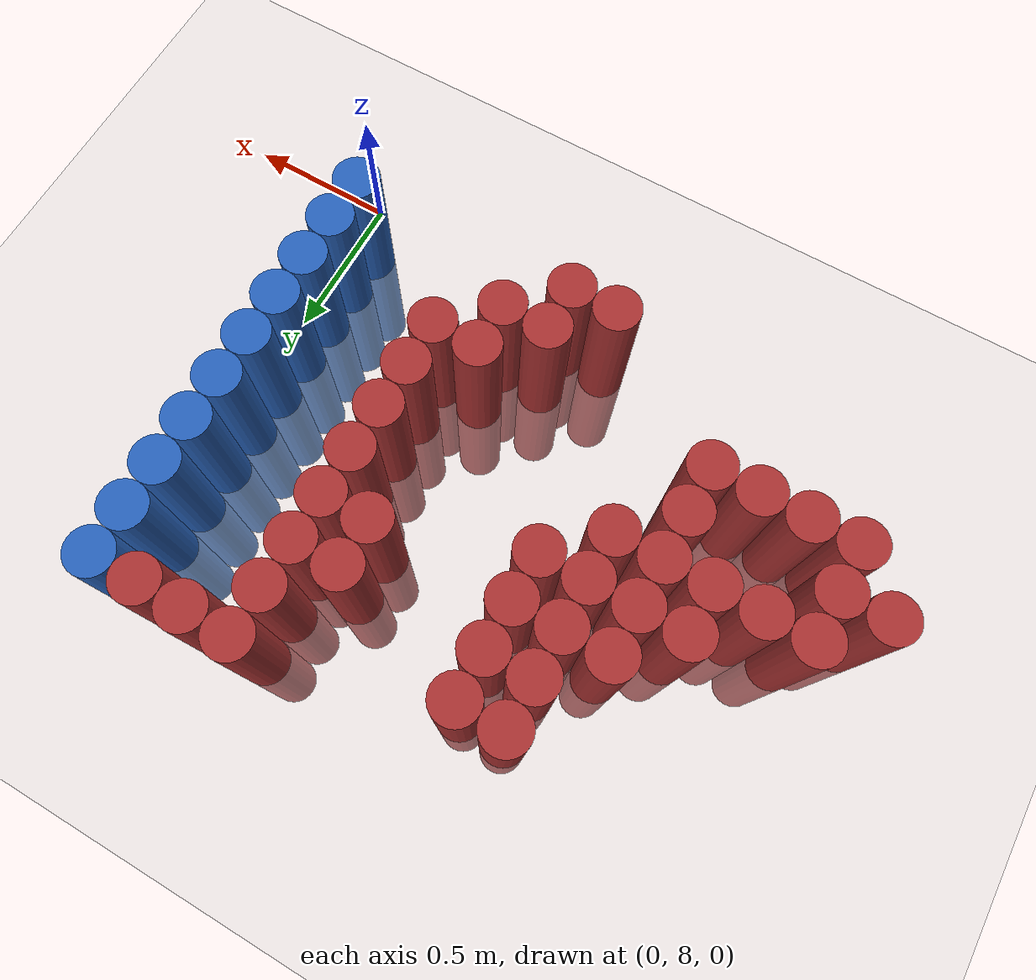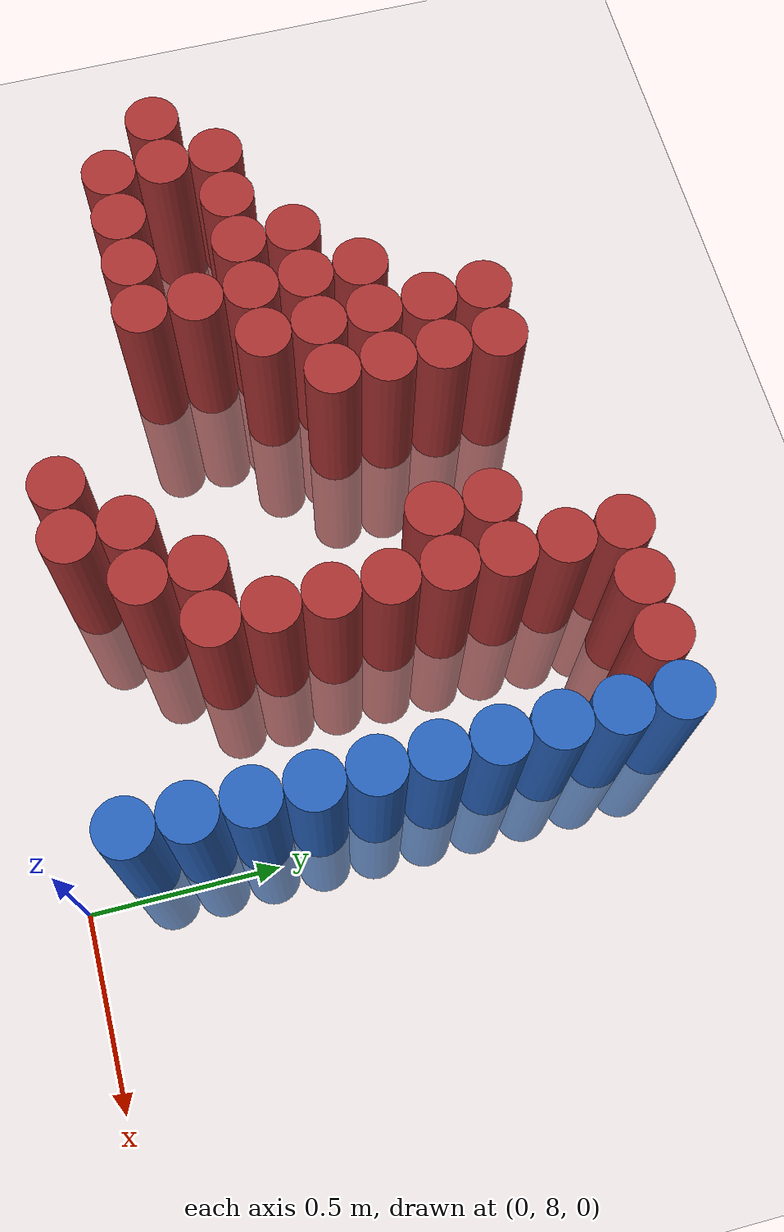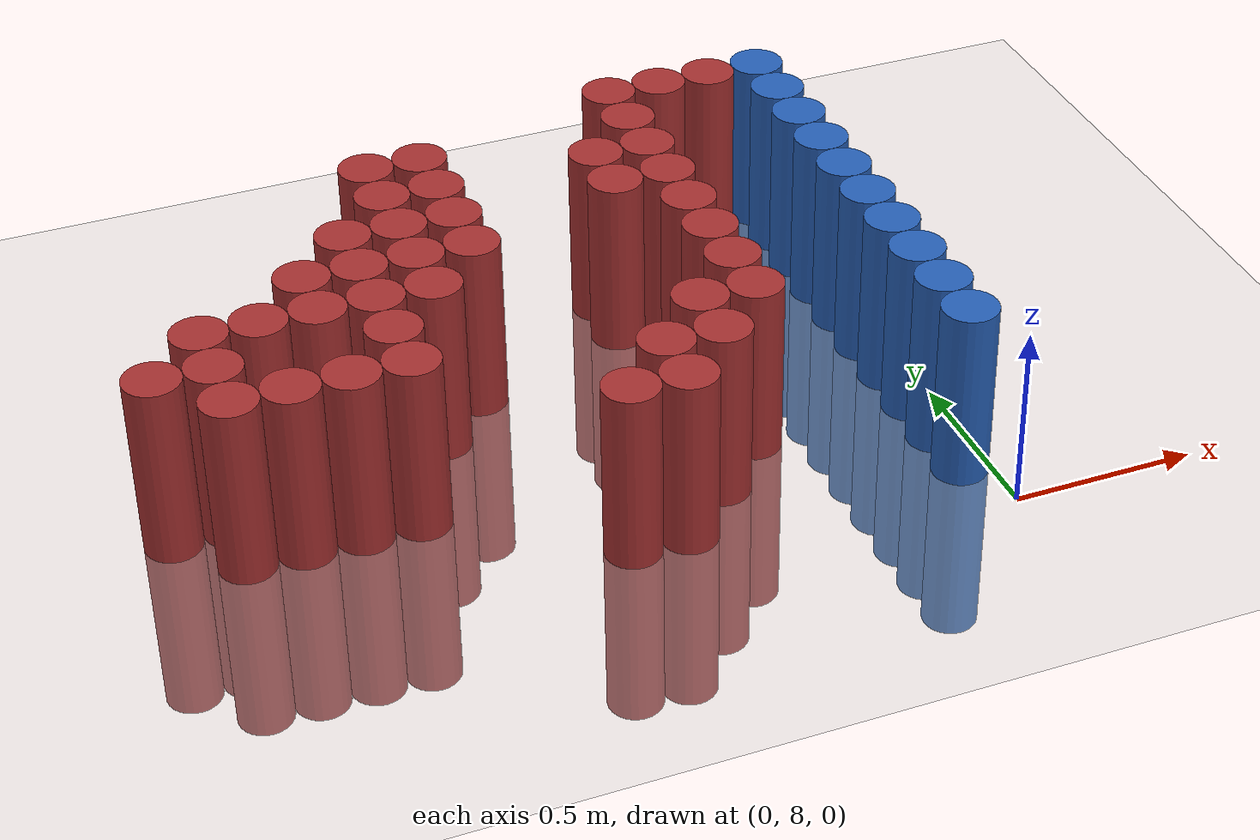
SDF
<sdf version="1.6">
 <world name="default">
  <model name="ground_plane">
   <static>1</static>
   <link name="link">
    <collision name="collision">
     <geometry><plane><normal>0 0 1</normal><size>100 100</size></plane></geometry>
     <surface><friction><ode><mu>100</mu><mu2>50</mu2></ode></friction></surface>
    </collision>
    <visual name="visual">
     <cast_shadows>0</cast_shadows>
     <geometry><plane><normal>0 0 1</normal><size>100 100</size></plane></geometry>
     <material>
      <script><uri>file://media/materials/scripts/gazebo.material</uri><name>Gazebo/Grey</name></script>
     </material>
    </visual>
   </link>
  </model>
  <model name="unit_cylinder_230">
   <static>1</static>
   <pose>-2.025000 8.625000 0.000000 0.000000 0.000000 0.000000</pose>
   <link name="link">
    <inertial>
     <mass>1</mass>
     <inertia><ixx>0.145833</ixx><ixy>0</ixy><ixz>0</ixz><iyy>0.145833</iyy><iyz>0</iyz><izz>0.125</izz></inertia>
    </inertial>
    <collision name="collision">
     <geometry><cylinder><radius>0.075000</radius><length>1</length></cylinder></geometry>
    </collision>
    <visual name="visual">
     <geometry><cylinder><radius>0.075000</radius><length>1</length></cylinder></geometry>
     <material>
      <ambient>0.648000 0.192000 0.192000 1</ambient>
      <diffuse>0.648000 0.192000 0.192000 1</diffuse>
     </material>
     <material>
      <script><name>Gazebo/Grey</name><uri>file://media/materials/scripts/gazebo.material</uri></script>
     </material>
    </visual>
   </link>
  </model>
  <model name="unit_cylinder_233">
   <static>1</static>
   <pose>-1.875000 8.475000 0.000000 0.000000 0.000000 0.000000</pose>
   <link name="link">
    <inertial>
     <mass>1</mass>
     <inertia><ixx>0.145833</ixx><ixy>0</ixy><ixz>0</ixz><iyy>0.145833</iyy><iyz>0</iyz><izz>0.125</izz></inertia>
    </inertial>
    <collision name="collision">
     <geometry><cylinder><radius>0.075000</radius><length>1</length></cylinder></geometry>
    </collision>
    <visual name="visual">
     <geometry><cylinder><radius>0.075000</radius><length>1</length></cylinder></geometry>
     <material>
      <ambient>0.648000 0.192000 0.192000 1</ambient>
      <diffuse>0.648000 0.192000 0.192000 1</diffuse>
     </material>
     <material>
      <script><name>Gazebo/Grey</name><uri>file://media/materials/scripts/gazebo.material</uri></script>
     </material>
    </visual>
   </link>
  </model>
  <model name="unit_cylinder_234">
   <static>1</static>
   <pose>-1.875000 8.625000 0.000000 0.000000 0.000000 0.000000</pose>
   <link name="link">
    <inertial>
     <mass>1</mass>
     <inertia><ixx>0.145833</ixx><ixy>0</ixy><ixz>0</ixz><iyy>0.145833</iyy><iyz>0</iyz><izz>0.125</izz></inertia>
    </inertial>
    <collision name="collision">
     <geometry><cylinder><radius>0.075000</radius><length>1</length></cylinder></geometry>
    </collision>
    <visual name="visual">
     <geometry><cylinder><radius>0.075000</radius><length>1</length></cylinder></geometry>
     <material>
      <ambient>0.648000 0.192000 0.192000 1</ambient>
      <diffuse>0.648000 0.192000 0.192000 1</diffuse>
     </material>
     <material>
      <script><name>Gazebo/Grey</name><uri>file://media/materials/scripts/gazebo.material</uri></script>
     </material>
    </visual>
   </link>
  </model>
  <model name="unit_cylinder_235">
   <static>1</static>
   <pose>-1.875000 8.775000 0.000000 0.000000 0.000000 0.000000</pose>
   <link name="link">
    <inertial>
     <mass>1</mass>
     <inertia><ixx>0.145833</ixx><ixy>0</ixy><ixz>0</ixz><iyy>0.145833</iyy><iyz>0</iyz><izz>0.125</izz></inertia>
    </inertial>
    <collision name="collision">
     <geometry><cylinder><radius>0.075000</radius><length>1</length></cylinder></geometry>
    </collision>
    <visual name="visual">
     <geometry><cylinder><radius>0.075000</radius><length>1</length></cylinder></geometry>
     <material>
      <ambient>0.648000 0.192000 0.192000 1</ambient>
      <diffuse>0.648000 0.192000 0.192000 1</diffuse>
     </material>
     <material>
      <script><name>Gazebo/Grey</name><uri>file://media/materials/scripts/gazebo.material</uri></script>
     </material>
    </visual>
   </link>
  </model>
  <model name="unit_cylinder_236">
   <static>1</static>
   <pose>-1.725000 8.475000 0.000000 0.000000 0.000000 0.000000</pose>
   <link name="link">
    <inertial>
     <mass>1</mass>
     <inertia><ixx>0.145833</ixx><ixy>0</ixy><ixz>0</ixz><iyy>0.145833</iyy><iyz>0</iyz><izz>0.125</izz></inertia>
    </inertial>
    <collision name="collision">
     <geometry><cylinder><radius>0.075000</radius><length>1</length></cylinder></geometry>
    </collision>
    <visual name="visual">
     <geometry><cylinder><radius>0.075000</radius><length>1</length></cylinder></geometry>
     <material>
      <ambient>0.648000 0.192000 0.192000 1</ambient>
      <diffuse>0.648000 0.192000 0.192000 1</diffuse>
     </material>
     <material>
      <script><name>Gazebo/Grey</name><uri>file://media/materials/scripts/gazebo.material</uri></script>
     </material>
    </visual>
   </link>
  </model>
  <model name="unit_cylinder_237">
   <static>1</static>
   <pose>-1.725000 8.775000 0.000000 0.000000 0.000000 0.000000</pose>
   <link name="link">
    <inertial>
     <mass>1</mass>
     <inertia><ixx>0.145833</ixx><ixy>0</ixy><ixz>0</ixz><iyy>0.145833</iyy><iyz>0</iyz><izz>0.125</izz></inertia>
    </inertial>
    <collision name="collision">
     <geometry><cylinder><radius>0.075000</radius><length>1</length></cylinder></geometry>
    </collision>
    <visual name="visual">
     <geometry><cylinder><radius>0.075000</radius><length>1</length></cylinder></geometry>
     <material>
      <ambient>0.648000 0.192000 0.192000 1</ambient>
      <diffuse>0.648000 0.192000 0.192000 1</diffuse>
     </material>
     <material>
      <script><name>Gazebo/Grey</name><uri>file://media/materials/scripts/gazebo.material</uri></script>
     </material>
    </visual>
   </link>
  </model>
  <model name="unit_cylinder_238">
   <static>1</static>
   <pose>-1.575000 8.475000 0.000000 0.000000 0.000000 0.000000</pose>
   <link name="link">
    <inertial>
     <mass>1</mass>
     <inertia><ixx>0.145833</ixx><ixy>0</ixy><ixz>0</ixz><iyy>0.145833</iyy><iyz>0</iyz><izz>0.125</izz></inertia>
    </inertial>
    <collision name="collision">
     <geometry><cylinder><radius>0.075000</radius><length>1</length></cylinder></geometry>
    </collision>
    <visual name="visual">
     <geometry><cylinder><radius>0.075000</radius><length>1</length></cylinder></geometry>
     <material>
      <ambient>0.648000 0.192000 0.192000 1</ambient>
      <diffuse>0.648000 0.192000 0.192000 1</diffuse>
     </material>
     <material>
      <script><name>Gazebo/Grey</name><uri>file://media/materials/scripts/gazebo.material</uri></script>
     </material>
    </visual>
   </link>
  </model>
  <model name="unit_cylinder_239">
   <static>1</static>
   <pose>-1.575000 8.775000 0.000000 0.000000 0.000000 0.000000</pose>
   <link name="link">
    <inertial>
     <mass>1</mass>
     <inertia><ixx>0.145833</ixx><ixy>0</ixy><ixz>0</ixz><iyy>0.145833</iyy><iyz>0</iyz><izz>0.125</izz></inertia>
    </inertial>
    <collision name="collision">
     <geometry><cylinder><radius>0.075000</radius><length>1</length></cylinder></geometry>
    </collision>
    <visual name="visual">
     <geometry><cylinder><radius>0.075000</radius><length>1</length></cylinder></geometry>
     <material>
      <ambient>0.648000 0.192000 0.192000 1</ambient>
      <diffuse>0.648000 0.192000 0.192000 1</diffuse>
     </material>
     <material>
      <script><name>Gazebo/Grey</name><uri>file://media/materials/scripts/gazebo.material</uri></script>
     </material>
    </visual>
   </link>
  </model>
  <model name="unit_cylinder_240">
   <static>1</static>
   <pose>-1.575000 8.925000 0.000000 0.000000 0.000000 0.000000</pose>
   <link name="link">
    <inertial>
     <mass>1</mass>
     <inertia><ixx>0.145833</ixx><ixy>0</ixy><ixz>0</ixz><iyy>0.145833</iyy><iyz>0</iyz><izz>0.125</izz></inertia>
    </inertial>
    <collision name="collision">
     <geometry><cylinder><radius>0.075000</radius><length>1</length></cylinder></geometry>
    </collision>
    <visual name="visual">
     <geometry><cylinder><radius>0.075000</radius><length>1</length></cylinder></geometry>
     <material>
      <ambient>0.648000 0.192000 0.192000 1</ambient>
      <diffuse>0.648000 0.192000 0.192000 1</diffuse>
     </material>
     <material>
      <script><name>Gazebo/Grey</name><uri>file://media/materials/scripts/gazebo.material</uri></script>
     </material>
    </visual>
   </link>
  </model>
  <model name="unit_cylinder_241">
   <static>1</static>
   <pose>-1.425000 8.475000 0.000000 0.000000 0.000000 0.000000</pose>
   <link name="link">
    <inertial>
     <mass>1</mass>
     <inertia><ixx>0.145833</ixx><ixy>0</ixy><ixz>0</ixz><iyy>0.145833</iyy><iyz>0</iyz><izz>0.125</izz></inertia>
    </inertial>
    <collision name="collision">
     <geometry><cylinder><radius>0.075000</radius><length>1</length></cylinder></geometry>
    </collision>
    <visual name="visual">
     <geometry><cylinder><radius>0.075000</radius><length>1</length></cylinder></geometry>
     <material>
      <ambient>0.648000 0.192000 0.192000 1</ambient>
      <diffuse>0.648000 0.192000 0.192000 1</diffuse>
     </material>
     <material>
      <script><name>Gazebo/Grey</name><uri>file://media/materials/scripts/gazebo.material</uri></script>
     </material>
    </visual>
   </link>
  </model>
  <model name="unit_cylinder_242">
   <static>1</static>
   <pose>-1.425000 8.625000 0.000000 0.000000 0.000000 0.000000</pose>
   <link name="link">
    <inertial>
     <mass>1</mass>
     <inertia><ixx>0.145833</ixx><ixy>0</ixy><ixz>0</ixz><iyy>0.145833</iyy><iyz>0</iyz><izz>0.125</izz></inertia>
    </inertial>
    <collision name="collision">
     <geometry><cylinder><radius>0.075000</radius><length>1</length></cylinder></geometry>
    </collision>
    <visual name="visual">
     <geometry><cylinder><radius>0.075000</radius><length>1</length></cylinder></geometry>
     <material>
      <ambient>0.648000 0.192000 0.192000 1</ambient>
      <diffuse>0.648000 0.192000 0.192000 1</diffuse>
     </material>
     <material>
      <script><name>Gazebo/Grey</name><uri>file://media/materials/scripts/gazebo.material</uri></script>
     </material>
    </visual>
   </link>
  </model>
  <model name="unit_cylinder_243">
   <static>1</static>
   <pose>-1.425000 8.775000 0.000000 0.000000 0.000000 0.000000</pose>
   <link name="link">
    <inertial>
     <mass>1</mass>
     <inertia><ixx>0.145833</ixx><ixy>0</ixy><ixz>0</ixz><iyy>0.145833</iyy><iyz>0</iyz><izz>0.125</izz></inertia>
    </inertial>
    <collision name="collision">
     <geometry><cylinder><radius>0.075000</radius><length>1</length></cylinder></geometry>
    </collision>
    <visual name="visual">
     <geometry><cylinder><radius>0.075000</radius><length>1</length></cylinder></geometry>
     <material>
      <ambient>0.648000 0.192000 0.192000 1</ambient>
      <diffuse>0.648000 0.192000 0.192000 1</diffuse>
     </material>
     <material>
      <script><name>Gazebo/Grey</name><uri>file://media/materials/scripts/gazebo.material</uri></script>
     </material>
    </visual>
   </link>
  </model>
  <model name="unit_cylinder_244">
   <static>1</static>
   <pose>-1.425000 8.925000 0.000000 0.000000 0.000000 0.000000</pose>
   <link name="link">
    <inertial>
     <mass>1</mass>
     <inertia><ixx>0.145833</ixx><ixy>0</ixy><ixz>0</ixz><iyy>0.145833</iyy><iyz>0</iyz><izz>0.125</izz></inertia>
    </inertial>
    <collision name="collision">
     <geometry><cylinder><radius>0.075000</radius><length>1</length></cylinder></geometry>
    </collision>
    <visual name="visual">
     <geometry><cylinder><radius>0.075000</radius><length>1</length></cylinder></geometry>
     <material>
      <ambient>0.648000 0.192000 0.192000 1</ambient>
      <diffuse>0.648000 0.192000 0.192000 1</diffuse>
     </material>
     <material>
      <script><name>Gazebo/Grey</name><uri>file://media/materials/scripts/gazebo.material</uri></script>
     </material>
    </visual>
   </link>
  </model>
  <model name="unit_cylinder_245">
   <static>1</static>
   <pose>-1.425000 9.075000 0.000000 0.000000 0.000000 0.000000</pose>
   <link name="link">
    <inertial>
     <mass>1</mass>
     <inertia><ixx>0.145833</ixx><ixy>0</ixy><ixz>0</ixz><iyy>0.145833</iyy><iyz>0</iyz><izz>0.125</izz></inertia>
    </inertial>
    <collision name="collision">
     <geometry><cylinder><radius>0.075000</radius><length>1</length></cylinder></geometry>
    </collision>
    <visual name="visual">
     <geometry><cylinder><radius>0.075000</radius><length>1</length></cylinder></geometry>
     <material>
      <ambient>0.648000 0.192000 0.192000 1</ambient>
      <diffuse>0.648000 0.192000 0.192000 1</diffuse>
     </material>
     <material>
      <script><name>Gazebo/Grey</name><uri>file://media/materials/scripts/gazebo.material</uri></script>
     </material>
    </visual>
   </link>
  </model>
  <model name="unit_cylinder_246">
   <static>1</static>
   <pose>-1.275000 8.775000 0.000000 0.000000 0.000000 0.000000</pose>
   <link name="link">
    <inertial>
     <mass>1</mass>
     <inertia><ixx>0.145833</ixx><ixy>0</ixy><ixz>0</ixz><iyy>0.145833</iyy><iyz>0</iyz><izz>0.125</izz></inertia>
    </inertial>
    <collision name="collision">
     <geometry><cylinder><radius>0.075000</radius><length>1</length></cylinder></geometry>
    </collision>
    <visual name="visual">
     <geometry><cylinder><radius>0.075000</radius><length>1</length></cylinder></geometry>
     <material>
      <ambient>0.648000 0.192000 0.192000 1</ambient>
      <diffuse>0.648000 0.192000 0.192000 1</diffuse>
     </material>
     <material>
      <script><name>Gazebo/Grey</name><uri>file://media/materials/scripts/gazebo.material</uri></script>
     </material>
    </visual>
   </link>
  </model>
  <model name="unit_cylinder_247">
   <static>1</static>
   <pose>-1.275000 8.925000 0.000000 0.000000 0.000000 0.000000</pose>
   <link name="link">
    <inertial>
     <mass>1</mass>
     <inertia><ixx>0.145833</ixx><ixy>0</ixy><ixz>0</ixz><iyy>0.145833</iyy><iyz>0</iyz><izz>0.125</izz></inertia>
    </inertial>
    <collision name="collision">
     <geometry><cylinder><radius>0.075000</radius><length>1</length></cylinder></geometry>
    </collision>
    <visual name="visual">
     <geometry><cylinder><radius>0.075000</radius><length>1</length></cylinder></geometry>
     <material>
      <ambient>0.648000 0.192000 0.192000 1</ambient>
      <diffuse>0.648000 0.192000 0.192000 1</diffuse>
     </material>
     <material>
      <script><name>Gazebo/Grey</name><uri>file://media/materials/scripts/gazebo.material</uri></script>
     </material>
    </visual>
   </link>
  </model>
  <model name="unit_cylinder_248">
   <static>1</static>
   <pose>-1.275000 9.075000 0.000000 0.000000 0.000000 0.000000</pose>
   <link name="link">
    <inertial>
     <mass>1</mass>
     <inertia><ixx>0.145833</ixx><ixy>0</ixy><ixz>0</ixz><iyy>0.145833</iyy><iyz>0</iyz><izz>0.125</izz></inertia>
    </inertial>
    <collision name="collision">
     <geometry><cylinder><radius>0.075000</radius><length>1</length></cylinder></geometry>
    </collision>
    <visual name="visual">
     <geometry><cylinder><radius>0.075000</radius><length>1</length></cylinder></geometry>
     <material>
      <ambient>0.648000 0.192000 0.192000 1</ambient>
      <diffuse>0.648000 0.192000 0.192000 1</diffuse>
     </material>
     <material>
      <script><name>Gazebo/Grey</name><uri>file://media/materials/scripts/gazebo.material</uri></script>
     </material>
    </visual>
   </link>
  </model>
  <model name="unit_cylinder_249">
   <static>1</static>
   <pose>-1.275000 9.225000 0.000000 0.000000 0.000000 0.000000</pose>
   <link name="link">
    <inertial>
     <mass>1</mass>
     <inertia><ixx>0.145833</ixx><ixy>0</ixy><ixz>0</ixz><iyy>0.145833</iyy><iyz>0</iyz><izz>0.125</izz></inertia>
    </inertial>
    <collision name="collision">
     <geometry><cylinder><radius>0.075000</radius><length>1</length></cylinder></geometry>
    </collision>
    <visual name="visual">
     <geometry><cylinder><radius>0.075000</radius><length>1</length></cylinder></geometry>
     <material>
      <ambient>0.648000 0.192000 0.192000 1</ambient>
      <diffuse>0.648000 0.192000 0.192000 1</diffuse>
     </material>
     <material>
      <script><name>Gazebo/Grey</name><uri>file://media/materials/scripts/gazebo.material</uri></script>
     </material>
    </visual>
   </link>
  </model>
  <model name="unit_cylinder_250">
   <static>1</static>
   <pose>-1.275000 9.375000 0.000000 0.000000 0.000000 0.000000</pose>
   <link name="link">
    <inertial>
     <mass>1</mass>
     <inertia><ixx>0.145833</ixx><ixy>0</ixy><ixz>0</ixz><iyy>0.145833</iyy><iyz>0</iyz><izz>0.125</izz></inertia>
    </inertial>
    <collision name="collision">
     <geometry><cylinder><radius>0.075000</radius><length>1</length></cylinder></geometry>
    </collision>
    <visual name="visual">
     <geometry><cylinder><radius>0.075000</radius><length>1</length></cylinder></geometry>
     <material>
      <ambient>0.648000 0.192000 0.192000 1</ambient>
      <diffuse>0.648000 0.192000 0.192000 1</diffuse>
     </material>
     <material>
      <script><name>Gazebo/Grey</name><uri>file://media/materials/scripts/gazebo.material</uri></script>
     </material>
    </visual>
   </link>
  </model>
  <model name="unit_cylinder_251">
   <static>1</static>
   <pose>-1.125000 8.925000 0.000000 0.000000 0.000000 0.000000</pose>
   <link name="link">
    <inertial>
     <mass>1</mass>
     <inertia><ixx>0.145833</ixx><ixy>0</ixy><ixz>0</ixz><iyy>0.145833</iyy><iyz>0</iyz><izz>0.125</izz></inertia>
    </inertial>
    <collision name="collision">
     <geometry><cylinder><radius>0.075000</radius><length>1</length></cylinder></geometry>
    </collision>
    <visual name="visual">
     <geometry><cylinder><radius>0.075000</radius><length>1</length></cylinder></geometry>
     <material>
      <ambient>0.648000 0.192000 0.192000 1</ambient>
      <diffuse>0.648000 0.192000 0.192000 1</diffuse>
     </material>
     <material>
      <script><name>Gazebo/Grey</name><uri>file://media/materials/scripts/gazebo.material</uri></script>
     </material>
    </visual>
   </link>
  </model>
  <model name="unit_cylinder_252">
   <static>1</static>
   <pose>-1.125000 9.075000 0.000000 0.000000 0.000000 0.000000</pose>
   <link name="link">
    <inertial>
     <mass>1</mass>
     <inertia><ixx>0.145833</ixx><ixy>0</ixy><ixz>0</ixz><iyy>0.145833</iyy><iyz>0</iyz><izz>0.125</izz></inertia>
    </inertial>
    <collision name="collision">
     <geometry><cylinder><radius>0.075000</radius><length>1</length></cylinder></geometry>
    </collision>
    <visual name="visual">
     <geometry><cylinder><radius>0.075000</radius><length>1</length></cylinder></geometry>
     <material>
      <ambient>0.648000 0.192000 0.192000 1</ambient>
      <diffuse>0.648000 0.192000 0.192000 1</diffuse>
     </material>
     <material>
      <script><name>Gazebo/Grey</name><uri>file://media/materials/scripts/gazebo.material</uri></script>
     </material>
    </visual>
   </link>
  </model>
  <model name="unit_cylinder_253">
   <static>1</static>
   <pose>-1.125000 9.225000 0.000000 0.000000 0.000000 0.000000</pose>
   <link name="link">
    <inertial>
     <mass>1</mass>
     <inertia><ixx>0.145833</ixx><ixy>0</ixy><ixz>0</ixz><iyy>0.145833</iyy><iyz>0</iyz><izz>0.125</izz></inertia>
    </inertial>
    <collision name="collision">
     <geometry><cylinder><radius>0.075000</radius><length>1</length></cylinder></geometry>
    </collision>
    <visual name="visual">
     <geometry><cylinder><radius>0.075000</radius><length>1</length></cylinder></geometry>
     <material>
      <ambient>0.648000 0.192000 0.192000 1</ambient>
      <diffuse>0.648000 0.192000 0.192000 1</diffuse>
     </material>
     <material>
      <script><name>Gazebo/Grey</name><uri>file://media/materials/scripts/gazebo.material</uri></script>
     </material>
    </visual>
   </link>
  </model>
  <model name="unit_cylinder_254">
   <static>1</static>
   <pose>-1.125000 9.375000 0.000000 0.000000 0.000000 0.000000</pose>
   <link name="link">
    <inertial>
     <mass>1</mass>
     <inertia><ixx>0.145833</ixx><ixy>0</ixy><ixz>0</ixz><iyy>0.145833</iyy><iyz>0</iyz><izz>0.125</izz></inertia>
    </inertial>
    <collision name="collision">
     <geometry><cylinder><radius>0.075000</radius><length>1</length></cylinder></geometry>
    </collision>
    <visual name="visual">
     <geometry><cylinder><radius>0.075000</radius><length>1</length></cylinder></geometry>
     <material>
      <ambient>0.648000 0.192000 0.192000 1</ambient>
      <diffuse>0.648000 0.192000 0.192000 1</diffuse>
     </material>
     <material>
      <script><name>Gazebo/Grey</name><uri>file://media/materials/scripts/gazebo.material</uri></script>
     </material>
    </visual>
   </link>
  </model>
  <model name="unit_cylinder_258">
   <static>1</static>
   <pose>-0.975000 8.175000 0.000000 0.000000 0.000000 0.000000</pose>
   <link name="link">
    <inertial>
     <mass>1</mass>
     <inertia><ixx>0.145833</ixx><ixy>0</ixy><ixz>0</ixz><iyy>0.145833</iyy><iyz>0</iyz><izz>0.125</izz></inertia>
    </inertial>
    <collision name="collision">
     <geometry><cylinder><radius>0.075000</radius><length>1</length></cylinder></geometry>
    </collision>
    <visual name="visual">
     <geometry><cylinder><radius>0.075000</radius><length>1</length></cylinder></geometry>
     <material>
      <ambient>0.648000 0.192000 0.192000 1</ambient>
      <diffuse>0.648000 0.192000 0.192000 1</diffuse>
     </material>
     <material>
      <script><name>Gazebo/Grey</name><uri>file://media/materials/scripts/gazebo.material</uri></script>
     </material>
    </visual>
   </link>
  </model>
  <model name="unit_cylinder_266">
   <static>1</static>
   <pose>-0.825000 8.175000 0.000000 0.000000 0.000000 0.000000</pose>
   <link name="link">
    <inertial>
     <mass>1</mass>
     <inertia><ixx>0.145833</ixx><ixy>0</ixy><ixz>0</ixz><iyy>0.145833</iyy><iyz>0</iyz><izz>0.125</izz></inertia>
    </inertial>
    <collision name="collision">
     <geometry><cylinder><radius>0.075000</radius><length>1</length></cylinder></geometry>
    </collision>
    <visual name="visual">
     <geometry><cylinder><radius>0.075000</radius><length>1</length></cylinder></geometry>
     <material>
      <ambient>0.648000 0.192000 0.192000 1</ambient>
      <diffuse>0.648000 0.192000 0.192000 1</diffuse>
     </material>
     <material>
      <script><name>Gazebo/Grey</name><uri>file://media/materials/scripts/gazebo.material</uri></script>
     </material>
    </visual>
   </link>
  </model>
  <model name="unit_cylinder_267">
   <static>1</static>
   <pose>-0.825000 8.325000 0.000000 0.000000 0.000000 0.000000</pose>
   <link name="link">
    <inertial>
     <mass>1</mass>
     <inertia><ixx>0.145833</ixx><ixy>0</ixy><ixz>0</ixz><iyy>0.145833</iyy><iyz>0</iyz><izz>0.125</izz></inertia>
    </inertial>
    <collision name="collision">
     <geometry><cylinder><radius>0.075000</radius><length>1</length></cylinder></geometry>
    </collision>
    <visual name="visual">
     <geometry><cylinder><radius>0.075000</radius><length>1</length></cylinder></geometry>
     <material>
      <ambient>0.648000 0.192000 0.192000 1</ambient>
      <diffuse>0.648000 0.192000 0.192000 1</diffuse>
     </material>
     <material>
      <script><name>Gazebo/Grey</name><uri>file://media/materials/scripts/gazebo.material</uri></script>
     </material>
    </visual>
   </link>
  </model>
  <model name="unit_cylinder_275">
   <static>1</static>
   <pose>-0.675000 8.325000 0.000000 0.000000 0.000000 0.000000</pose>
   <link name="link">
    <inertial>
     <mass>1</mass>
     <inertia><ixx>0.145833</ixx><ixy>0</ixy><ixz>0</ixz><iyy>0.145833</iyy><iyz>0</iyz><izz>0.125</izz></inertia>
    </inertial>
    <collision name="collision">
     <geometry><cylinder><radius>0.075000</radius><length>1</length></cylinder></geometry>
    </collision>
    <visual name="visual">
     <geometry><cylinder><radius>0.075000</radius><length>1</length></cylinder></geometry>
     <material>
      <ambient>0.648000 0.192000 0.192000 1</ambient>
      <diffuse>0.648000 0.192000 0.192000 1</diffuse>
     </material>
     <material>
      <script><name>Gazebo/Grey</name><uri>file://media/materials/scripts/gazebo.material</uri></script>
     </material>
    </visual>
   </link>
  </model>
  <model name="unit_cylinder_276">
   <static>1</static>
   <pose>-0.675000 8.475000 0.000000 0.000000 0.000000 0.000000</pose>
   <link name="link">
    <inertial>
     <mass>1</mass>
     <inertia><ixx>0.145833</ixx><ixy>0</ixy><ixz>0</ixz><iyy>0.145833</iyy><iyz>0</iyz><izz>0.125</izz></inertia>
    </inertial>
    <collision name="collision">
     <geometry><cylinder><radius>0.075000</radius><length>1</length></cylinder></geometry>
    </collision>
    <visual name="visual">
     <geometry><cylinder><radius>0.075000</radius><length>1</length></cylinder></geometry>
     <material>
      <ambient>0.648000 0.192000 0.192000 1</ambient>
      <diffuse>0.648000 0.192000 0.192000 1</diffuse>
     </material>
     <material>
      <script><name>Gazebo/Grey</name><uri>file://media/materials/scripts/gazebo.material</uri></script>
     </material>
    </visual>
   </link>
  </model>
  <model name="unit_cylinder_277">
   <static>1</static>
   <pose>-0.675000 9.075000 0.000000 0.000000 0.000000 0.000000</pose>
   <link name="link">
    <inertial>
     <mass>1</mass>
     <inertia><ixx>0.145833</ixx><ixy>0</ixy><ixz>0</ixz><iyy>0.145833</iyy><iyz>0</iyz><izz>0.125</izz></inertia>
    </inertial>
    <collision name="collision">
     <geometry><cylinder><radius>0.075000</radius><length>1</length></cylinder></geometry>
    </collision>
    <visual name="visual">
     <geometry><cylinder><radius>0.075000</radius><length>1</length></cylinder></geometry>
     <material>
      <ambient>0.648000 0.192000 0.192000 1</ambient>
      <diffuse>0.648000 0.192000 0.192000 1</diffuse>
     </material>
     <material>
      <script><name>Gazebo/Grey</name><uri>file://media/materials/scripts/gazebo.material</uri></script>
     </material>
    </visual>
   </link>
  </model>
  <model name="unit_cylinder_278">
   <static>1</static>
   <pose>-0.675000 9.225000 0.000000 0.000000 0.000000 0.000000</pose>
   <link name="link">
    <inertial>
     <mass>1</mass>
     <inertia><ixx>0.145833</ixx><ixy>0</ixy><ixz>0</ixz><iyy>0.145833</iyy><iyz>0</iyz><izz>0.125</izz></inertia>
    </inertial>
    <collision name="collision">
     <geometry><cylinder><radius>0.075000</radius><length>1</length></cylinder></geometry>
    </collision>
    <visual name="visual">
     <geometry><cylinder><radius>0.075000</radius><length>1</length></cylinder></geometry>
     <material>
      <ambient>0.648000 0.192000 0.192000 1</ambient>
      <diffuse>0.648000 0.192000 0.192000 1</diffuse>
     </material>
     <material>
      <script><name>Gazebo/Grey</name><uri>file://media/materials/scripts/gazebo.material</uri></script>
     </material>
    </visual>
   </link>
  </model>
  <model name="unit_cylinder_286">
   <static>1</static>
   <pose>-0.525000 8.475000 0.000000 0.000000 0.000000 0.000000</pose>
   <link name="link">
    <inertial>
     <mass>1</mass>
     <inertia><ixx>0.145833</ixx><ixy>0</ixy><ixz>0</ixz><iyy>0.145833</iyy><iyz>0</iyz><izz>0.125</izz></inertia>
    </inertial>
    <collision name="collision">
     <geometry><cylinder><radius>0.075000</radius><length>1</length></cylinder></geometry>
    </collision>
    <visual name="visual">
     <geometry><cylinder><radius>0.075000</radius><length>1</length></cylinder></geometry>
     <material>
      <ambient>0.648000 0.192000 0.192000 1</ambient>
      <diffuse>0.648000 0.192000 0.192000 1</diffuse>
     </material>
     <material>
      <script><name>Gazebo/Grey</name><uri>file://media/materials/scripts/gazebo.material</uri></script>
     </material>
    </visual>
   </link>
  </model>
  <model name="unit_cylinder_287">
   <static>1</static>
   <pose>-0.525000 8.625000 0.000000 0.000000 0.000000 0.000000</pose>
   <link name="link">
    <inertial>
     <mass>1</mass>
     <inertia><ixx>0.145833</ixx><ixy>0</ixy><ixz>0</ixz><iyy>0.145833</iyy><iyz>0</iyz><izz>0.125</izz></inertia>
    </inertial>
    <collision name="collision">
     <geometry><cylinder><radius>0.075000</radius><length>1</length></cylinder></geometry>
    </collision>
    <visual name="visual">
     <geometry><cylinder><radius>0.075000</radius><length>1</length></cylinder></geometry>
     <material>
      <ambient>0.648000 0.192000 0.192000 1</ambient>
      <diffuse>0.648000 0.192000 0.192000 1</diffuse>
     </material>
     <material>
      <script><name>Gazebo/Grey</name><uri>file://media/materials/scripts/gazebo.material</uri></script>
     </material>
    </visual>
   </link>
  </model>
  <model name="unit_cylinder_288">
   <static>1</static>
   <pose>-0.525000 8.775000 0.000000 0.000000 0.000000 0.000000</pose>
   <link name="link">
    <inertial>
     <mass>1</mass>
     <inertia><ixx>0.145833</ixx><ixy>0</ixy><ixz>0</ixz><iyy>0.145833</iyy><iyz>0</iyz><izz>0.125</izz></inertia>
    </inertial>
    <collision name="collision">
     <geometry><cylinder><radius>0.075000</radius><length>1</length></cylinder></geometry>
    </collision>
    <visual name="visual">
     <geometry><cylinder><radius>0.075000</radius><length>1</length></cylinder></geometry>
     <material>
      <ambient>0.648000 0.192000 0.192000 1</ambient>
      <diffuse>0.648000 0.192000 0.192000 1</diffuse>
     </material>
     <material>
      <script><name>Gazebo/Grey</name><uri>file://media/materials/scripts/gazebo.material</uri></script>
     </material>
    </visual>
   </link>
  </model>
  <model name="unit_cylinder_289">
   <static>1</static>
   <pose>-0.525000 8.925000 0.000000 0.000000 0.000000 0.000000</pose>
   <link name="link">
    <inertial>
     <mass>1</mass>
     <inertia><ixx>0.145833</ixx><ixy>0</ixy><ixz>0</ixz><iyy>0.145833</iyy><iyz>0</iyz><izz>0.125</izz></inertia>
    </inertial>
    <collision name="collision">
     <geometry><cylinder><radius>0.075000</radius><length>1</length></cylinder></geometry>
    </collision>
    <visual name="visual">
     <geometry><cylinder><radius>0.075000</radius><length>1</length></cylinder></geometry>
     <material>
      <ambient>0.648000 0.192000 0.192000 1</ambient>
      <diffuse>0.648000 0.192000 0.192000 1</diffuse>
     </material>
     <material>
      <script><name>Gazebo/Grey</name><uri>file://media/materials/scripts/gazebo.material</uri></script>
     </material>
    </visual>
   </link>
  </model>
  <model name="unit_cylinder_290">
   <static>1</static>
   <pose>-0.525000 9.075000 0.000000 0.000000 0.000000 0.000000</pose>
   <link name="link">
    <inertial>
     <mass>1</mass>
     <inertia><ixx>0.145833</ixx><ixy>0</ixy><ixz>0</ixz><iyy>0.145833</iyy><iyz>0</iyz><izz>0.125</izz></inertia>
    </inertial>
    <collision name="collision">
     <geometry><cylinder><radius>0.075000</radius><length>1</length></cylinder></geometry>
    </collision>
    <visual name="visual">
     <geometry><cylinder><radius>0.075000</radius><length>1</length></cylinder></geometry>
     <material>
      <ambient>0.648000 0.192000 0.192000 1</ambient>
      <diffuse>0.648000 0.192000 0.192000 1</diffuse>
     </material>
     <material>
      <script><name>Gazebo/Grey</name><uri>file://media/materials/scripts/gazebo.material</uri></script>
     </material>
    </visual>
   </link>
  </model>
  <model name="unit_cylinder_291">
   <static>1</static>
   <pose>-0.525000 9.225000 0.000000 0.000000 0.000000 0.000000</pose>
   <link name="link">
    <inertial>
     <mass>1</mass>
     <inertia><ixx>0.145833</ixx><ixy>0</ixy><ixz>0</ixz><iyy>0.145833</iyy><iyz>0</iyz><izz>0.125</izz></inertia>
    </inertial>
    <collision name="collision">
     <geometry><cylinder><radius>0.075000</radius><length>1</length></cylinder></geometry>
    </collision>
    <visual name="visual">
     <geometry><cylinder><radius>0.075000</radius><length>1</length></cylinder></geometry>
     <material>
      <ambient>0.648000 0.192000 0.192000 1</ambient>
      <diffuse>0.648000 0.192000 0.192000 1</diffuse>
     </material>
     <material>
      <script><name>Gazebo/Grey</name><uri>file://media/materials/scripts/gazebo.material</uri></script>
     </material>
    </visual>
   </link>
  </model>
  <model name="unit_cylinder_292">
   <static>1</static>
   <pose>-0.525000 9.375000 0.000000 0.000000 0.000000 0.000000</pose>
   <link name="link">
    <inertial>
     <mass>1</mass>
     <inertia><ixx>0.145833</ixx><ixy>0</ixy><ixz>0</ixz><iyy>0.145833</iyy><iyz>0</iyz><izz>0.125</izz></inertia>
    </inertial>
    <collision name="collision">
     <geometry><cylinder><radius>0.075000</radius><length>1</length></cylinder></geometry>
    </collision>
    <visual name="visual">
     <geometry><cylinder><radius>0.075000</radius><length>1</length></cylinder></geometry>
     <material>
      <ambient>0.648000 0.192000 0.192000 1</ambient>
      <diffuse>0.648000 0.192000 0.192000 1</diffuse>
     </material>
     <material>
      <script><name>Gazebo/Grey</name><uri>file://media/materials/scripts/gazebo.material</uri></script>
     </material>
    </visual>
   </link>
  </model>
  <model name="unit_cylinder_293">
   <static>1</static>
   <pose>-0.525000 9.525000 0.000000 0.000000 0.000000 0.000000</pose>
   <link name="link">
    <inertial>
     <mass>1</mass>
     <inertia><ixx>0.145833</ixx><ixy>0</ixy><ixz>0</ixz><iyy>0.145833</iyy><iyz>0</iyz><izz>0.125</izz></inertia>
    </inertial>
    <collision name="collision">
     <geometry><cylinder><radius>0.075000</radius><length>1</length></cylinder></geometry>
    </collision>
    <visual name="visual">
     <geometry><cylinder><radius>0.075000</radius><length>1</length></cylinder></geometry>
     <material>
      <ambient>0.648000 0.192000 0.192000 1</ambient>
      <diffuse>0.648000 0.192000 0.192000 1</diffuse>
     </material>
     <material>
      <script><name>Gazebo/Grey</name><uri>file://media/materials/scripts/gazebo.material</uri></script>
     </material>
    </visual>
   </link>
  </model>
  <model name="unit_cylinder_304">
   <static>1</static>
   <pose>-0.375000 9.525000 0.000000 0.000000 0.000000 0.000000</pose>
   <link name="link">
    <inertial>
     <mass>1</mass>
     <inertia><ixx>0.145833</ixx><ixy>0</ixy><ixz>0</ixz><iyy>0.145833</iyy><iyz>0</iyz><izz>0.125</izz></inertia>
    </inertial>
    <collision name="collision">
     <geometry><cylinder><radius>0.075000</radius><length>1</length></cylinder></geometry>
    </collision>
    <visual name="visual">
     <geometry><cylinder><radius>0.075000</radius><length>1</length></cylinder></geometry>
     <material>
      <ambient>0.648000 0.192000 0.192000 1</ambient>
      <diffuse>0.648000 0.192000 0.192000 1</diffuse>
     </material>
     <material>
      <script><name>Gazebo/Grey</name><uri>file://media/materials/scripts/gazebo.material</uri></script>
     </material>
    </visual>
   </link>
  </model>
  <model name="unit_cylinder_316">
   <static>1</static>
   <pose>-0.225000 9.525000 0.000000 0.000000 0.000000 0.000000</pose>
   <link name="link">
    <inertial>
     <mass>1</mass>
     <inertia><ixx>0.145833</ixx><ixy>0</ixy><ixz>0</ixz><iyy>0.145833</iyy><iyz>0</iyz><izz>0.125</izz></inertia>
    </inertial>
    <collision name="collision">
     <geometry><cylinder><radius>0.075000</radius><length>1</length></cylinder></geometry>
    </collision>
    <visual name="visual">
     <geometry><cylinder><radius>0.075000</radius><length>1</length></cylinder></geometry>
     <material>
      <ambient>0.648000 0.192000 0.192000 1</ambient>
      <diffuse>0.648000 0.192000 0.192000 1</diffuse>
     </material>
     <material>
      <script><name>Gazebo/Grey</name><uri>file://media/materials/scripts/gazebo.material</uri></script>
     </material>
    </visual>
   </link>
  </model>
  <model name="unit_cylinder_337">
   <static>1</static>
   <pose>-0.075000 8.175000 0.000000 0.000000 0.000000 0.000000</pose>
   <link name="link">
    <inertial>
     <mass>1</mass>
     <inertia><ixx>0.145833</ixx><ixy>0</ixy><ixz>0</ixz><iyy>0.145833</iyy><iyz>0</iyz><izz>0.125</izz></inertia>
    </inertial>
    <collision name="collision">
     <geometry><cylinder><radius>0.075000</radius><length>1</length></cylinder></geometry>
    </collision>
    <visual name="visual">
     <geometry><cylinder><radius>0.075000</radius><length>1</length></cylinder></geometry>
     <material>
      <ambient>0.152000 0.379000 0.720000 1</ambient>
      <diffuse>0.152000 0.379000 0.720000 1</diffuse>
     </material>
     <material>
      <script><name>Gazebo/Grey</name><uri>file://media/materials/scripts/gazebo.material</uri></script>
     </material>
    </visual>
   </link>
  </model>
  <model name="unit_cylinder_338">
   <static>1</static>
   <pose>-0.075000 8.325000 0.000000 0.000000 0.000000 0.000000</pose>
   <link name="link">
    <inertial>
     <mass>1</mass>
     <inertia><ixx>0.145833</ixx><ixy>0</ixy><ixz>0</ixz><iyy>0.145833</iyy><iyz>0</iyz><izz>0.125</izz></inertia>
    </inertial>
    <collision name="collision">
     <geometry><cylinder><radius>0.075000</radius><length>1</length></cylinder></geometry>
    </collision>
    <visual name="visual">
     <geometry><cylinder><radius>0.075000</radius><length>1</length></cylinder></geometry>
     <material>
      <ambient>0.152000 0.379000 0.720000 1</ambient>
      <diffuse>0.152000 0.379000 0.720000 1</diffuse>
     </material>
     <material>
      <script><name>Gazebo/Grey</name><uri>file://media/materials/scripts/gazebo.material</uri></script>
     </material>
    </visual>
   </link>
  </model>
  <model name="unit_cylinder_339">
   <static>1</static>
   <pose>-0.075000 8.475000 0.000000 0.000000 0.000000 0.000000</pose>
   <link name="link">
    <inertial>
     <mass>1</mass>
     <inertia><ixx>0.145833</ixx><ixy>0</ixy><ixz>0</ixz><iyy>0.145833</iyy><iyz>0</iyz><izz>0.125</izz></inertia>
    </inertial>
    <collision name="collision">
     <geometry><cylinder><radius>0.075000</radius><length>1</length></cylinder></geometry>
    </collision>
    <visual name="visual">
     <geometry><cylinder><radius>0.075000</radius><length>1</length></cylinder></geometry>
     <material>
      <ambient>0.152000 0.379000 0.720000 1</ambient>
      <diffuse>0.152000 0.379000 0.720000 1</diffuse>
     </material>
     <material>
      <script><name>Gazebo/Grey</name><uri>file://media/materials/scripts/gazebo.material</uri></script>
     </material>
    </visual>
   </link>
  </model>
  <model name="unit_cylinder_340">
   <static>1</static>
   <pose>-0.075000 8.625000 0.000000 0.000000 0.000000 0.000000</pose>
   <link name="link">
    <inertial>
     <mass>1</mass>
     <inertia><ixx>0.145833</ixx><ixy>0</ixy><ixz>0</ixz><iyy>0.145833</iyy><iyz>0</iyz><izz>0.125</izz></inertia>
    </inertial>
    <collision name="collision">
     <geometry><cylinder><radius>0.075000</radius><length>1</length></cylinder></geometry>
    </collision>
    <visual name="visual">
     <geometry><cylinder><radius>0.075000</radius><length>1</length></cylinder></geometry>
     <material>
      <ambient>0.152000 0.379000 0.720000 1</ambient>
      <diffuse>0.152000 0.379000 0.720000 1</diffuse>
     </material>
     <material>
      <script><name>Gazebo/Grey</name><uri>file://media/materials/scripts/gazebo.material</uri></script>
     </material>
    </visual>
   </link>
  </model>
  <model name="unit_cylinder_341">
   <static>1</static>
   <pose>-0.075000 8.775000 0.000000 0.000000 0.000000 0.000000</pose>
   <link name="link">
    <inertial>
     <mass>1</mass>
     <inertia><ixx>0.145833</ixx><ixy>0</ixy><ixz>0</ixz><iyy>0.145833</iyy><iyz>0</iyz><izz>0.125</izz></inertia>
    </inertial>
    <collision name="collision">
     <geometry><cylinder><radius>0.075000</radius><length>1</length></cylinder></geometry>
    </collision>
    <visual name="visual">
     <geometry><cylinder><radius>0.075000</radius><length>1</length></cylinder></geometry>
     <material>
      <ambient>0.152000 0.379000 0.720000 1</ambient>
      <diffuse>0.152000 0.379000 0.720000 1</diffuse>
     </material>
     <material>
      <script><name>Gazebo/Grey</name><uri>file://media/materials/scripts/gazebo.material</uri></script>
     </material>
    </visual>
   </link>
  </model>
  <model name="unit_cylinder_342">
   <static>1</static>
   <pose>-0.075000 8.925000 0.000000 0.000000 0.000000 0.000000</pose>
   <link name="link">
    <inertial>
     <mass>1</mass>
     <inertia><ixx>0.145833</ixx><ixy>0</ixy><ixz>0</ixz><iyy>0.145833</iyy><iyz>0</iyz><izz>0.125</izz></inertia>
    </inertial>
    <collision name="collision">
     <geometry><cylinder><radius>0.075000</radius><length>1</length></cylinder></geometry>
    </collision>
    <visual name="visual">
     <geometry><cylinder><radius>0.075000</radius><length>1</length></cylinder></geometry>
     <material>
      <ambient>0.152000 0.379000 0.720000 1</ambient>
      <diffuse>0.152000 0.379000 0.720000 1</diffuse>
     </material>
     <material>
      <script><name>Gazebo/Grey</name><uri>file://media/materials/scripts/gazebo.material</uri></script>
     </material>
    </visual>
   </link>
  </model>
  <model name="unit_cylinder_343">
   <static>1</static>
   <pose>-0.075000 9.075000 0.000000 0.000000 0.000000 0.000000</pose>
   <link name="link">
    <inertial>
     <mass>1</mass>
     <inertia><ixx>0.145833</ixx><ixy>0</ixy><ixz>0</ixz><iyy>0.145833</iyy><iyz>0</iyz><izz>0.125</izz></inertia>
    </inertial>
    <collision name="collision">
     <geometry><cylinder><radius>0.075000</radius><length>1</length></cylinder></geometry>
    </collision>
    <visual name="visual">
     <geometry><cylinder><radius>0.075000</radius><length>1</length></cylinder></geometry>
     <material>
      <ambient>0.152000 0.379000 0.720000 1</ambient>
      <diffuse>0.152000 0.379000 0.720000 1</diffuse>
     </material>
     <material>
      <script><name>Gazebo/Grey</name><uri>file://media/materials/scripts/gazebo.material</uri></script>
     </material>
    </visual>
   </link>
  </model>
  <model name="unit_cylinder_344">
   <static>1</static>
   <pose>-0.075000 9.225000 0.000000 0.000000 0.000000 0.000000</pose>
   <link name="link">
    <inertial>
     <mass>1</mass>
     <inertia><ixx>0.145833</ixx><ixy>0</ixy><ixz>0</ixz><iyy>0.145833</iyy><iyz>0</iyz><izz>0.125</izz></inertia>
    </inertial>
    <collision name="collision">
     <geometry><cylinder><radius>0.075000</radius><length>1</length></cylinder></geometry>
    </collision>
    <visual name="visual">
     <geometry><cylinder><radius>0.075000</radius><length>1</length></cylinder></geometry>
     <material>
      <ambient>0.152000 0.379000 0.720000 1</ambient>
      <diffuse>0.152000 0.379000 0.720000 1</diffuse>
     </material>
     <material>
      <script><name>Gazebo/Grey</name><uri>file://media/materials/scripts/gazebo.material</uri></script>
     </material>
    </visual>
   </link>
  </model>
  <model name="unit_cylinder_345">
   <static>1</static>
   <pose>-0.075000 9.375000 0.000000 0.000000 0.000000 0.000000</pose>
   <link name="link">
    <inertial>
     <mass>1</mass>
     <inertia><ixx>0.145833</ixx><ixy>0</ixy><ixz>0</ixz><iyy>0.145833</iyy><iyz>0</iyz><izz>0.125</izz></inertia>
    </inertial>
    <collision name="collision">
     <geometry><cylinder><radius>0.075000</radius><length>1</length></cylinder></geometry>
    </collision>
    <visual name="visual">
     <geometry><cylinder><radius>0.075000</radius><length>1</length></cylinder></geometry>
     <material>
      <ambient>0.152000 0.379000 0.720000 1</ambient>
      <diffuse>0.152000 0.379000 0.720000 1</diffuse>
     </material>
     <material>
      <script><name>Gazebo/Grey</name><uri>file://media/materials/scripts/gazebo.material</uri></script>
     </material>
    </visual>
   </link>
  </model>
  <model name="unit_cylinder_346">
   <static>1</static>
   <pose>-0.075000 9.525000 0.000000 0.000000 0.000000 0.000000</pose>
   <link name="link">
    <inertial>
     <mass>1</mass>
     <inertia><ixx>0.145833</ixx><ixy>0</ixy><ixz>0</ixz><iyy>0.145833</iyy><iyz>0</iyz><izz>0.125</izz></inertia>
    </inertial>
    <collision name="collision">
     <geometry><cylinder><radius>0.075000</radius><length>1</length></cylinder></geometry>
    </collision>
    <visual name="visual">
     <geometry><cylinder><radius>0.075000</radius><length>1</length></cylinder></geometry>
     <material>
      <ambient>0.152000 0.379000 0.720000 1</ambient>
      <diffuse>0.152000 0.379000 0.720000 1</diffuse>
     </material>
     <material>
      <script><name>Gazebo/Grey</name><uri>file://media/materials/scripts/gazebo.material</uri></script>
     </material>
    </visual>
   </link>
  </model>
 </world>
</sdf>
